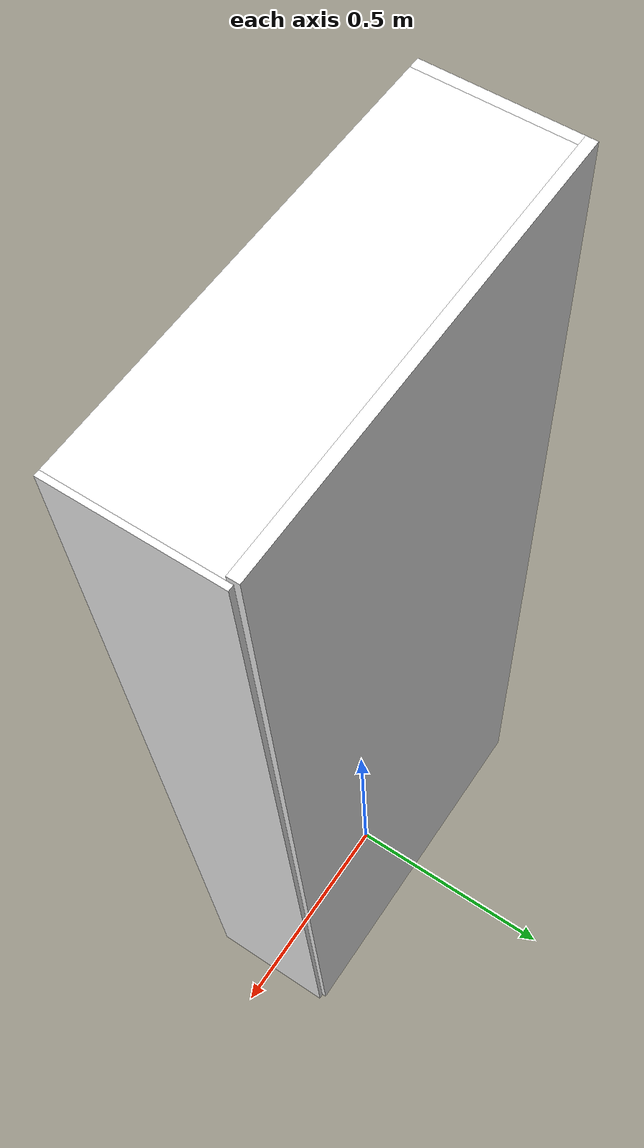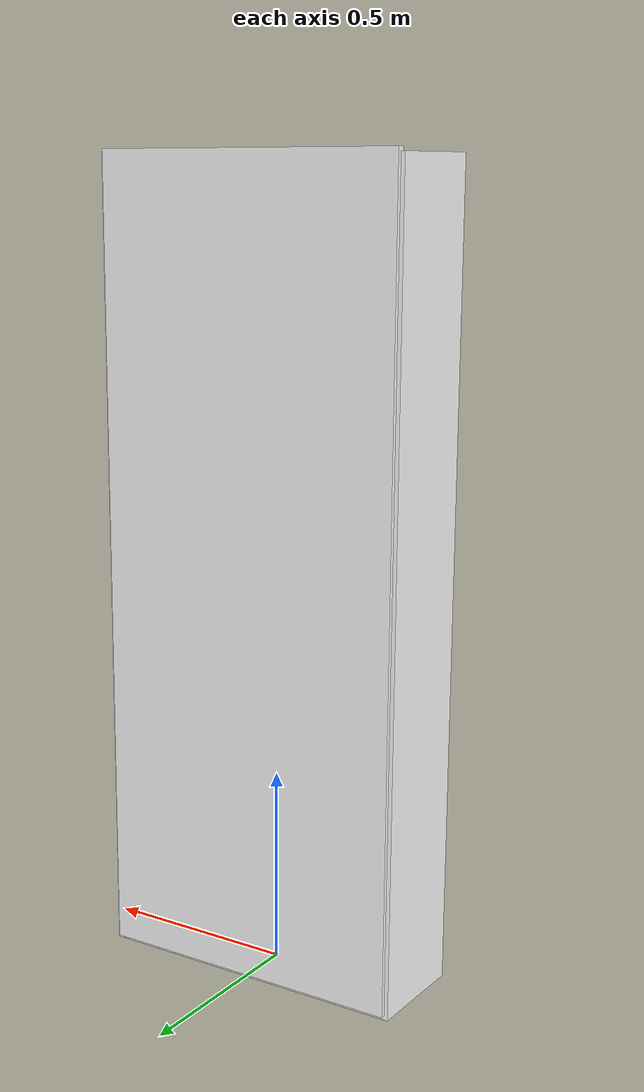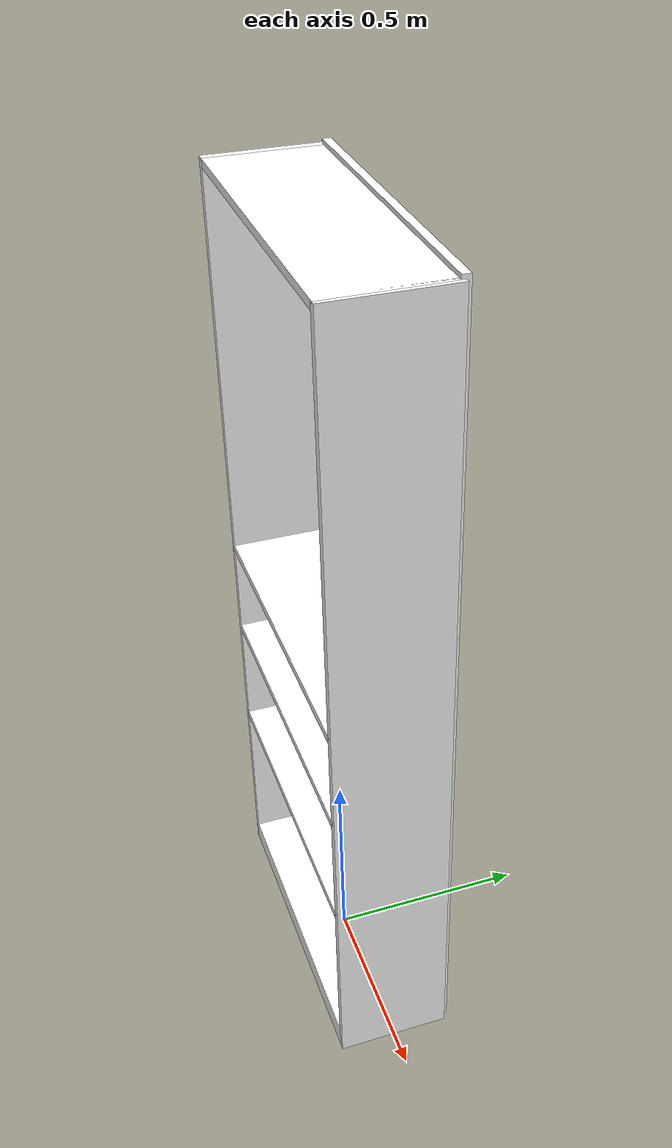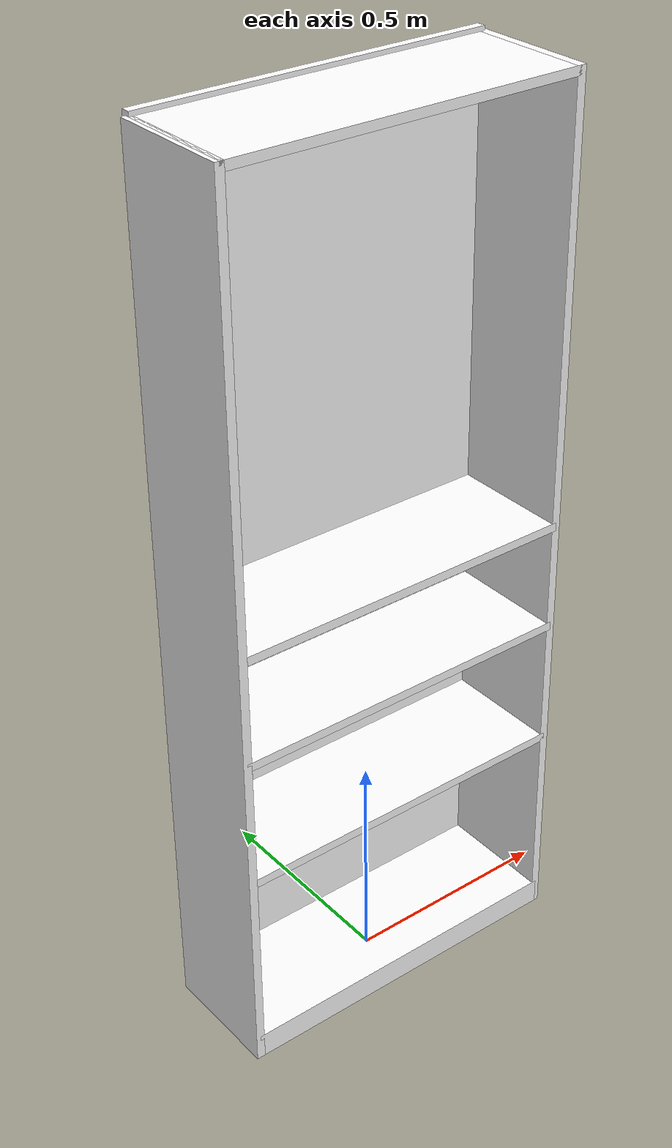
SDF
<?xml version="1.0" ?>
<sdf version="1.5">
  <model name="wrc_bookshelf">
    <static>true</static>
    <link name="link">
      <inertial>
        <mass>1.0</mass>
      </inertial>
      <collision name="back">
        <pose>0 0.14 1.02 0 0 0</pose>
        <geometry>
          <box>
            <size>0.8 0.02 2.02</size>
          </box>
        </geometry>
      </collision>
      <visual name="back_v">
        <pose>0 0.14 1.02 0 0 0</pose>
        <geometry>
          <box>
            <size>0.8 0.02 2.02</size>
          </box>
        </geometry>
        <material>
          <name>white</name>
          <ambient>1.0 1.0 1.0 1.0</ambient>
          <diffuse>1.0 1.0 1.0 1.0</diffuse>
          <specular>0.1 0.1 0.1 1.0</specular>
          <shininess>5.0</shininess>
        </material>
      </visual>
      <collision name="left_side">
        <pose>0.4 0 1.01 0 0 0</pose>
        <geometry>
          <box>
            <size>0.02 0.28 2.02</size>
          </box>
        </geometry>
      </collision>
      <visual name="left_side_v">
        <pose>0.4 0 1.01 0 0 0</pose>
        <geometry>
          <box>
            <size>0.02 0.28 2.02</size>
          </box>
        </geometry>
        <material>
          <name>white</name>
          <ambient>1.0 1.0 1.0 1.0</ambient>
          <diffuse>1.0 1.0 1.0 1.0</diffuse>
          <specular>0.1 0.1 0.1 1.0</specular>
          <shininess>5.0</shininess>
        </material>
      </visual>
      <collision name="right_side">
        <pose>-0.4 0 1.01 0 0 0</pose>
        <geometry>
          <box>
            <size>0.02 0.28 2.02</size>
          </box>
        </geometry>
      </collision>
      <visual name="right_side_v">
        <pose>-0.4 0 1.01 0 0 0</pose>
        <geometry>
          <box>
            <size>0.02 0.28 2.02</size>
          </box>
        </geometry>
        <material>
          <name>white</name>
          <ambient>1.0 1.0 1.0 1.0</ambient>
          <diffuse>1.0 1.0 1.0 1.0</diffuse>
          <specular>0.1 0.1 0.1 1.0</specular>
          <shininess>5.0</shininess>
        </material>
      </visual>
      <collision name="bottom">
        <pose>0 0 0.03 0 0 0</pose>
        <geometry>
          <box>
            <size>0.8 0.28 0.06</size>
          </box>
        </geometry>
      </collision>
      <visual name="bottom_v">
        <pose>0 0 0.03 0 0 0</pose>
        <geometry>
          <box>
            <size>0.8 0.28 0.06</size>
          </box>
        </geometry>
        <material>
          <name>white</name>
          <ambient>1.0 1.0 1.0 1.0</ambient>
          <diffuse>1.0 1.0 1.0 1.0</diffuse>
          <specular>0.1 0.1 0.1 1.0</specular>
          <shininess>5.0</shininess>
        </material>
      </visual>
      <collision name="top">
        <pose>0 0 2.01 0 0 0</pose>
        <geometry>
          <box>
            <size>0.8 0.28 0.02</size>
          </box>
        </geometry>
      </collision>
      <visual name="top_v">
        <pose>0 0 2.01 0 0 0</pose>
        <geometry>
          <box>
            <size>0.8 0.28 0.02</size>
          </box>
        </geometry>
        <material>
          <name>white</name>
          <ambient>1.0 1.0 1.0 1.0</ambient>
          <diffuse>1.0 1.0 1.0 1.0</diffuse>
          <specular>0.1 0.1 0.1 1.0</specular>
          <shininess>5.0</shininess>
        </material>
      </visual>
      <collision name="slit1">
        <pose>0 0 0.49 0 0 0</pose>
        <geometry>
          <box>
            <size>0.8 0.28 0.02</size>
          </box>
        </geometry>
      </collision>
      <visual name="slit1_v">
        <pose>0 0 0.49 0 0 0</pose>
        <geometry>
          <box>
            <size>0.8 0.28 0.02</size>
          </box>
        </geometry>
        <material>
          <name>white</name>
          <ambient>1.0 1.0 1.0 1.0</ambient>
          <diffuse>1.0 1.0 1.0 1.0</diffuse>
          <specular>0.1 0.1 0.1 1.0</specular>
          <shininess>5.0</shininess>
        </material>
      </visual>
      <collision name="slit2">
        <pose>0 0 0.79 0 0 0</pose>
        <geometry>
          <box>
            <size>0.8 0.28 0.02</size>
          </box>
        </geometry>
      </collision>
      <visual name="slit2_v">
        <pose>0 0 0.79 0 0 0</pose>
        <geometry>
          <box>
            <size>0.8 0.28 0.02</size>
          </box>
        </geometry>
        <material>
          <name>white</name>
          <ambient>1.0 1.0 1.0 1.0</ambient>
          <diffuse>1.0 1.0 1.0 1.0</diffuse>
          <specular>0.1 0.1 0.1 1.0</specular>
          <shininess>5.0</shininess>
        </material>
      </visual>
      <collision name="slit3">
        <pose>0 0 1.04 0 0 0</pose>
        <geometry>
          <box>
            <size>0.8 0.28 0.02</size>
          </box>
        </geometry>
      </collision>
      <visual name="slit3_v">
        <pose>0 0 1.04 0 0 0</pose>
        <geometry>
          <box>
            <size>0.8 0.28 0.02</size>
          </box>
        </geometry>
        <material>
          <name>white</name>
          <ambient>1.0 1.0 1.0 1.0</ambient>
          <diffuse>1.0 1.0 1.0 1.0</diffuse>
          <specular>0.1 0.1 0.1 1.0</specular>
          <shininess>5.0</shininess>
        </material>
      </visual>
    </link>
  </model>
</sdf>
